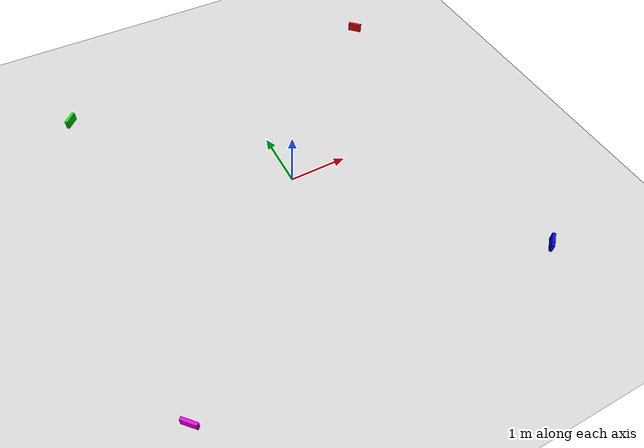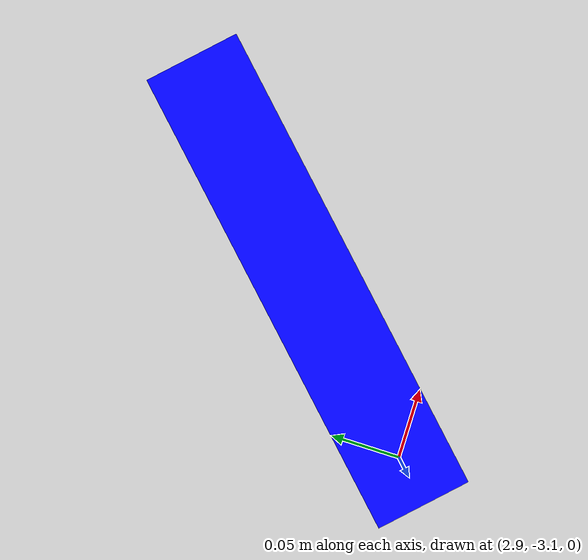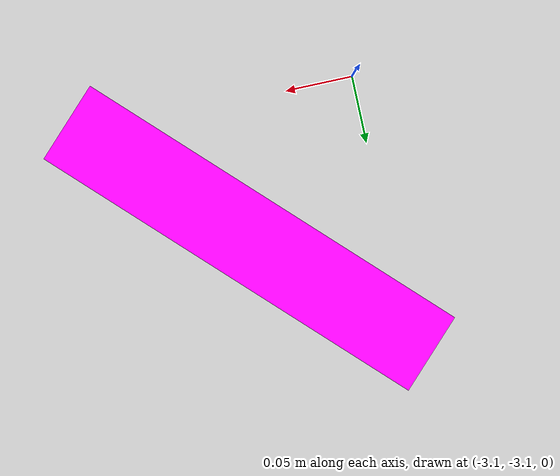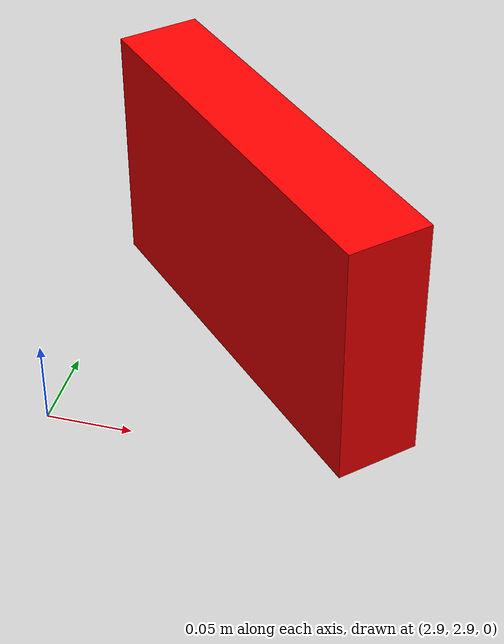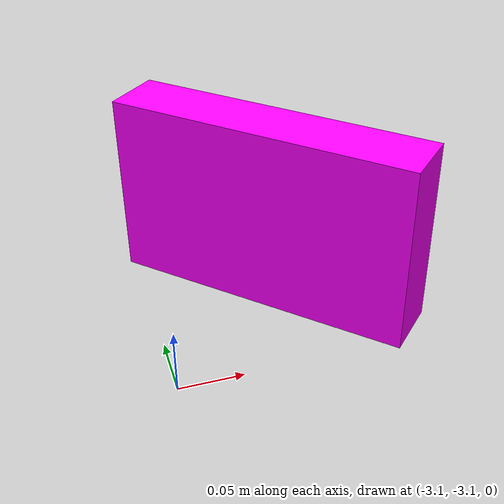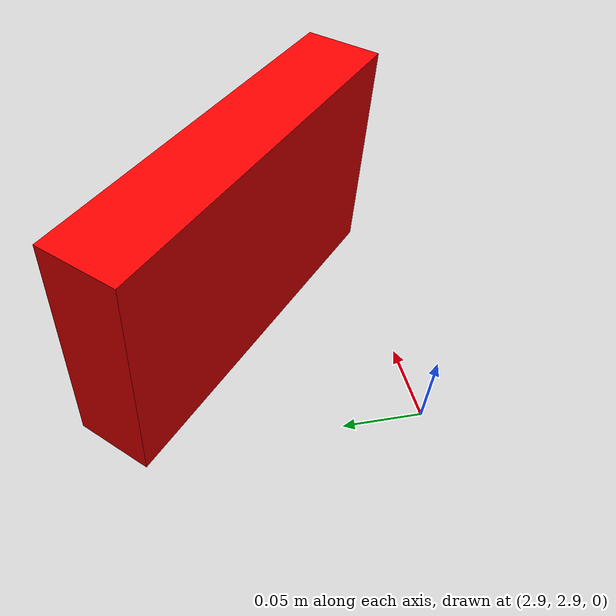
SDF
<?xml version="1.0" encoding="UTF-8"?>
<sdf version="1.6">
  <world name="square_world">
    <include>
      <uri>model://sun</uri>
    </include>
    <include>
      <uri>model://ground_plane</uri>
    </include>
    <!-- Square -->
    <model name="square1">
      <pose>3 3 0.025 0 0 0.785398</pose>
      <link name="link">
        <collision name="collision">
          <geometry>
            <box>
              <size>0.05 0.25 0.25</size>
            </box>
          </geometry>
        </collision>
        <visual name="visual">
          <geometry>
            <box>
              <size>0.05 0.25 0.25</size>
            </box>
          </geometry>
          <material>
            <ambient>1 0 0 1</ambient>
            <diffuse>1 0 0 1</diffuse>
          </material>
        </visual>
      </link>
    </model>
    <model name="square2">
      <pose>-3 3 0.025 0 0 -0.785398</pose>
      <link name="link">
        <collision name="collision">
          <geometry>
            <box>
              <size>0.05 0.25 0.25</size>
            </box>
          </geometry>
        </collision>
        <visual name="visual">
          <geometry>
            <box>
              <size>0.05 0.25 0.25</size>
            </box>
          </geometry>
          <material>
            <ambient>0 1 0 1</ambient>
            <diffuse>0 1 0 1</diffuse>
          </material>
        </visual>
      </link>
    </model>
    <model name="square3">
      <pose>3 -3 0.025 0 0 -0.785398</pose>
      <link name="link">
        <collision name="collision">
          <geometry>
            <box>
              <size>0.05 0.25 0.25</size>
            </box>
          </geometry>
        </collision>
        <visual name="visual">
          <geometry>
            <box>
              <size>0.05 0.25 0.25</size>
            </box>
          </geometry>
          <material>
            <ambient>0 0 1 1</ambient>
            <diffuse>0 0 1 1</diffuse>
          </material>
        </visual>
      </link>
    </model>
    <model name="square4">
      <pose>-3 -3 0.025 0 0 0.785398</pose>
      <link name="link">
        <collision name="collision">
          <geometry>
            <box>
              <size>0.05 0.25 0.25</size>
            </box>
          </geometry>
        </collision>
        <visual name="visual">
          <geometry>
            <box>
              <size>0.05 0.25 0.25</size>
            </box>
          </geometry>
          <material>
            <ambient>1 0 1 1</ambient>
            <diffuse>1 0 1 1</diffuse>
          </material>
        </visual>
      </link>
    </model>
  </world>
</sdf>
